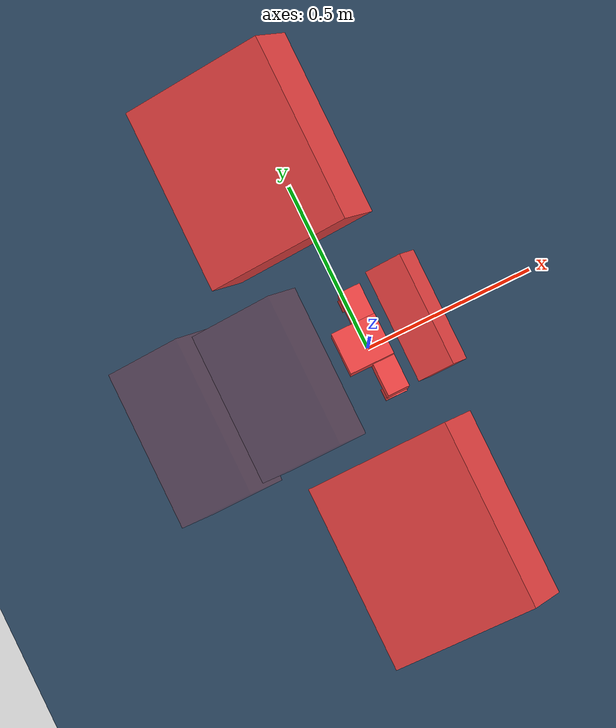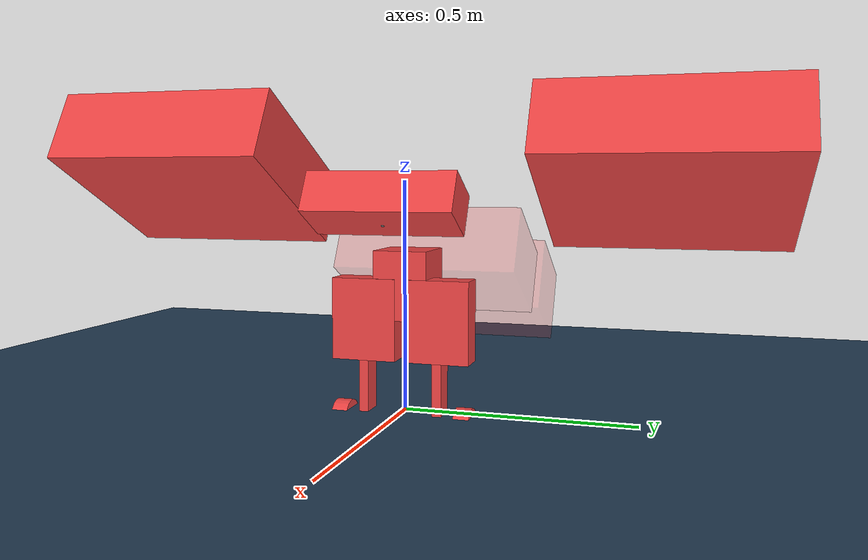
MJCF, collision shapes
<mujoco model="walking eagle u9 pace flat scene">
  <include file="u9_pace.xml" />
  <statistic center="0 0 0.15" extent="0.8" />
  <visual>
    <headlight diffuse="0.6 0.6 0.6" ambient="0.3 0.3 0.3" specular="0 0 0" />
    <rgba haze="0.15 0.25 0.35 1" />
    <global azimuth="-130" elevation="-20" />
  </visual>
  <asset>
    <texture type="skybox" builtin="gradient" rgb1="0.3 0.5 0.7" rgb2="0 0 0" width="512" height="3072" />
    <texture type="2d" name="groundplane" builtin="checker" mark="edge" rgb1="0.2 0.3 0.4" rgb2="0.1 0.2 0.3" markrgb="0.8 0.8 0.8" width="300" height="300" />
    <material name="groundplane" texture="groundplane" texuniform="true" texrepeat="5 5" reflectance="0.2" />
  </asset>
  <worldbody>
    <light pos="0 0 1.5" dir="0 0 -1" directional="true" />
    <geom name="floor" size="0 0 0.05" type="plane" material="groundplane" friction="1.0 0.005 0.0001" />
  </worldbody>
  <keyframe>
    <key name="home" qpos="0 0 0.30 1 0 0 0 0.8 -1.6 0 0.8 -1.6 0" ctrl="0 0 0 0 0 0" />
  </keyframe>
</mujoco>

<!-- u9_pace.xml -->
<mujoco model="walking_eagle_u9_pace">
  <compiler angle="radian" meshdir="meshes_lod" autolimits="true" />
  <option timestep="0.001" gravity="0 0 -9.81" integrator="Euler" />
  <asset>
    <mesh name="base_link_part_00" file="base_link_part_00.STL" />
    <mesh name="base_link_part_01" file="base_link_part_01.STL" />
    <mesh name="base_link_part_02" file="base_link_part_02.STL" />
    <mesh name="base_link_part_03" file="base_link_part_03.STL" />
    <mesh name="base_link_part_04" file="base_link_part_04.STL" />
    <material name="base_link_mat" rgba="1.0 1.0 1.0 1.0" specular="0" />
    <mesh name="left_thigh_link" file="left_thigh_link.STL" />
    <material name="left_thigh_link_mat" rgba="1.0 1.0 1.0 1.0" specular="0" />
    <mesh name="left_calf_link_part_00" file="left_calf_link_part_00.STL" />
    <mesh name="left_calf_link_part_01" file="left_calf_link_part_01.STL" />
    <material name="left_calf_link_mat" rgba="1.0 1.0 1.0 1.0" specular="0" />
    <mesh name="left_foot_link" file="left_foot_link.STL" />
    <material name="left_foot_link_mat" rgba="1.0 1.0 1.0 1.0" specular="0" />
    <mesh name="right_thigh_link" file="right_thigh_link.STL" />
    <material name="right_thigh_link_mat" rgba="1.0 1.0 1.0 1.0" specular="0" />
    <mesh name="right_calf_link_part_00" file="right_calf_link_part_00.STL" />
    <mesh name="right_calf_link_part_01" file="right_calf_link_part_01.STL" />
    <material name="right_calf_link_mat" rgba="1.0 1.0 1.0 1.0" specular="0" />
    <mesh name="right_foot_link" file="right_foot_link.STL" />
    <material name="right_foot_link_mat" rgba="1.0 1.0 1.0 1.0" specular="0" />
    <mesh name="dandan_link" file="dandan_link.STL" />
    <material name="dandan_link_mat" rgba="1.0 1.0 1.0 1.0" specular="0" />
  </asset>
  <worldbody>
    <body name="base_link" pos="0 0 0.30">
      <inertial pos="0.0019409 -4.201e-05 -0.014633" mass="1.0582" fullinertia="0.0033774 0.0054377 0.0042155 2.17e-06 -0.0016967 -3.05e-06" />
      <freejoint />
      <site name="imu" pos="0 0 0" />
      <site name="push_site" pos="0.14543 0 0.1118" quat="0.946255 0 -0.323422 0" />
      <geom name="base_link_visual" type="mesh" mesh="base_link_part_00" material="base_link_mat" group="1" contype="0" conaffinity="0" />
      <geom name="base_link_visual_0_1" type="mesh" mesh="base_link_part_01" material="base_link_mat" group="1" contype="0" conaffinity="0" />
      <geom name="base_link_visual_0_2" type="mesh" mesh="base_link_part_02" material="base_link_mat" group="1" contype="0" conaffinity="0" />
      <geom name="base_link_visual_0_3" type="mesh" mesh="base_link_part_03" material="base_link_mat" group="1" contype="0" conaffinity="0" />
      <geom name="base_link_visual_0_4" type="mesh" mesh="base_link_part_04" material="base_link_mat" group="1" contype="0" conaffinity="0" />
      <geom name="base_link_collision" type="box" size="0.063984999 0.059149999 0.075000012" pos="-0.019765003 0.0 -0.024499988" rgba="0.9373 0.2667 0.2667 0.25" group="3" contype="1" conaffinity="1" />
      <site name="base_link_touch_site" type="box" size="0.063984999 0.059149999 0.075000012" pos="-0.019765003 0.0 -0.024499988" rgba="1 0 0 0.15" />
      <body name="left_thigh_joint" pos="0.01425 0.0537 -0.0415" quat="0.5000249993783629 -0.49997683606264415 0.5000231628575238 0.49997499937838347">
        <inertial pos="0.016016 0.00042709 0.056411" mass="0.45883631" fullinertia="0.00027108 0.0009777 0.00078368 -1.081e-05 0.00020322 9.85e-06" />
        <joint name="left_thigh_joint" type="hinge" axis="0.0 0.0 1.0" damping="6.9259916554931245e-05" frictionloss="0.00039277340996955734" armature="0.003395025986270572" limited="true" range="-0.43 1.57" />
        <geom name="left_thigh_link_visual" type="mesh" mesh="left_thigh_link" material="left_thigh_link_mat" group="1" contype="0" conaffinity="0" />
        <geom name="left_thigh_collision" type="box" size="0.088995105 0.031453958 0.071400002" pos="0.057495112 1.2701e-05 0.027400002" rgba="0.9373 0.2667 0.2667 0.25" group="3" contype="1" conaffinity="1" />
        <site name="left_thigh_touch_site" type="box" size="0.088995105 0.031453958 0.071400002" pos="0.057495112 1.2701e-05 0.027400002" rgba="1 0 0 0.15" />
        <body name="left_calf_joint" pos="0.136 0.0 0.0283">
          <inertial pos="0.13057987 -7.624e-05 0.01403969" mass="0.24876" fullinertia="3.508e-05 0.00051941 0.00050426 -3.28e-06 -6.874e-05 -2.6e-07" />
          <joint name="left_calf_joint" type="hinge" axis="0.0 0.0 1.0" damping="0.0014802078217493464" frictionloss="0.18304102565728816" armature="0.019759596621712217" limited="true" range="-2.669 -0.17" />
          <geom name="left_calf_link_visual" type="mesh" mesh="left_calf_link_part_00" material="left_calf_link_mat" group="1" contype="0" conaffinity="0" />
          <geom name="left_calf_link_visual_0_1" type="mesh" mesh="left_calf_link_part_01" material="left_calf_link_mat" group="1" contype="0" conaffinity="0" />
          <geom name="left_calf_collision" type="box" size="0.098638031 0.027 0.01" pos="0.07836197 0.0 0.0" rgba="0.9373 0.2667 0.2667 0.25" group="3" contype="1" conaffinity="1" />
          <site name="left_calf_touch_site" type="box" size="0.098638031 0.027 0.01" pos="0.07836197 0.0 0.0" rgba="1 0 0 0.15" />
          <body name="left_foot_joint" pos="0.15 0.0 0.038">
            <inertial pos="-6.41e-06 2.82e-06 0.016578" mass="0.12784" fullinertia="7.506e-05 7.507e-05 0.00012118 0.0 1e-08 0.0" />
            <joint name="left_foot_joint" type="hinge" axis="0.0 0.0 1.0" damping="0" frictionloss="0" armature="0.00080000000000000004" limited="false" />
            <geom name="left_foot_link_visual" type="mesh" mesh="left_foot_link" material="left_foot_link_mat" group="1" contype="0" conaffinity="0" />
            <geom name="left_foot_collision" type="cylinder" size="0.0425 0.017285155" pos="0.0 0.0 0.016785155" rgba="0.9373 0.2667 0.2667 0.25" group="3" contype="1" conaffinity="1" />
            <site name="left_foot_touch_site" type="cylinder" size="0.0425 0.017285155" pos="0.0 0.0 0.016785155" rgba="1 0 0 0.15" />
          </body>
        </body>
      </body>
      <body name="right_thigh_joint" pos="0.01425 -0.05405 -0.0415" quat="0.49999816339744835 0.4999999999966269 0.4999999999966269 -0.5000018366025517">
        <inertial pos="0.016016 -0.00042709 0.056411" mass="0.45883631" fullinertia="0.00027108 0.0009777 0.00078368 1.081e-05 0.00020322 -9.85e-06" />
        <joint name="right_thigh_joint" type="hinge" axis="0.0 0.0 -1.0" damping="6.9259916554931245e-05" frictionloss="0.00039277340996955734" armature="0.003395025986270572" limited="true" range="-0.43 1.57" />
        <geom name="right_thigh_link_visual" type="mesh" mesh="right_thigh_link" material="right_thigh_link_mat" group="1" contype="0" conaffinity="0" />
        <geom name="right_thigh_collision" type="box" size="0.088995105 0.031453958 0.071400002" pos="0.057495112 -1.2701e-05 0.027400002" rgba="0.9373 0.2667 0.2667 0.25" group="3" contype="1" conaffinity="1" />
        <site name="right_thigh_touch_site" type="box" size="0.088995105 0.031453958 0.071400002" pos="0.057495112 -1.2701e-05 0.027400002" rgba="1 0 0 0.15" />
        <body name="right_calf_joint" pos="0.13600000000003 0.0 0.0282999999998195">
          <inertial pos="0.13057987 7.624e-05 0.01403969" mass="0.24876" fullinertia="3.508e-05 0.00051941 0.00050426 3.28e-06 -6.874e-05 2.6e-07" />
          <joint name="right_calf_joint" type="hinge" axis="0.0 0.0 -1.0" damping="0.0014802078217493464" frictionloss="0.18304102565728816" armature="0.019759596621712217" limited="true" range="-2.669 -0.17" />
          <geom name="right_calf_link_visual" type="mesh" mesh="right_calf_link_part_00" material="right_calf_link_mat" group="1" contype="0" conaffinity="0" />
          <geom name="right_calf_link_visual_0_1" type="mesh" mesh="right_calf_link_part_01" material="right_calf_link_mat" group="1" contype="0" conaffinity="0" />
          <geom name="right_calf_collision" type="box" size="0.098638031 0.027 0.01" pos="0.07836197 0.0 0.0" rgba="0.9373 0.2667 0.2667 0.25" group="3" contype="1" conaffinity="1" />
          <site name="right_calf_touch_site" type="box" size="0.098638031 0.027 0.01" pos="0.07836197 0.0 0.0" rgba="1 0 0 0.15" />
          <body name="right_foot_joint" pos="0.15 0.0 0.038">
            <inertial pos="-6.41e-06 -2.82e-06 0.016578" mass="0.12784" fullinertia="7.506e-05 7.507e-05 0.00012118 0.0 1e-08 0.0" />
            <joint name="right_foot_joint" type="hinge" axis="0.0 0.0 -1.0" damping="0" frictionloss="0" armature="0.00080000000000000004" limited="false" />
            <geom name="right_foot_link_visual" type="mesh" mesh="right_foot_link" material="right_foot_link_mat" group="1" contype="0" conaffinity="0" />
            <geom name="right_foot_collision" type="cylinder" size="0.0425 0.017285155" pos="0.0 0.0 0.016785155" rgba="0.9373 0.2667 0.2667 0.25" group="3" contype="1" conaffinity="1" />
            <site name="right_foot_touch_site" type="cylinder" size="0.0425 0.017285155" pos="0.0 0.0 0.016785155" rgba="1 0 0 0.15" />
          </body>
        </body>
      </body>
      <body name="dandan_link" pos="0.14543 -0.00020015 0.1118" quat="0.9702959912474363 0.0 -0.24192083285478982 0.0">
        <inertial pos="-0.05511192 1.77e-05 0.05323178" mass="0.91468954" fullinertia="0.02435745 0.02290379 0.04310401 1.302e-05 0.00072178 4.12e-06" />
        <geom name="dandan_link_visual" type="mesh" mesh="dandan_link" material="dandan_link_mat" group="1" contype="0" conaffinity="0" />
        <geom name="dandan_upper_left_collision" type="box" pos="-0.15145913884043694 0.5448607355356216 0.20693397521972656" size="0.21690913799405098 0.2588063119649887 0.08434064078330994" rgba="0.9373 0.2667 0.2667 0.25" group="3" contype="1" conaffinity="1" />
        <site name="dandan_upper_left_touch_site" type="box" pos="-0.15145913884043694 0.5448607355356216 0.20693397521972656" size="0.21690913799405098 0.2588063119649887 0.08434064078330994" rgba="1 0 0 0.15" />
        <geom name="dandan_upper_right_collision" type="box" pos="-0.15145913884043694 -0.5448104739189148 0.20693397521972656" size="0.21690913799405098 0.2588063268661499 0.08434064078330994" rgba="0.9373 0.2667 0.2667 0.25" group="3" contype="1" conaffinity="1" />
        <site name="dandan_upper_right_touch_site" type="box" pos="-0.15145913884043694 -0.5448104739189148 0.20693397521972656" size="0.21690913799405098 0.2588063268661499 0.08434064078330994" rgba="1 0 0 0.15" />
        <geom name="dandan_tail_rear_collision" type="box" pos="-0.6829455494880676 5.5149197578430176e-05 0.13310958445072174" size="0.11842022228240967 0.22869452226161957 0.09300958502292633" rgba="0.9373 0.2667 0.2667 0.25" group="3" contype="0" conaffinity="0" />
        <site name="dandan_tail_rear_touch_site" type="box" pos="-0.6829455494880676 5.5149197578430176e-05 0.13310958445072174" size="0.11842022228240967 0.22869452226161957 0.09300958502292633" rgba="1 0 0 0.15" />
        <geom name="dandan_tail_mid_collision" type="box" pos="-0.4141962379217148 2.514570951461792e-05 0.10103941895067692" size="0.12959622728824616 0.21641197937726975 0.08043941806256771" rgba="0.9373 0.2667 0.2667 0.25" group="3" contype="0" conaffinity="0" />
        <site name="dandan_tail_mid_touch_site" type="box" pos="-0.4141962379217148 2.514570951461792e-05 0.10103941895067692" size="0.12959622728824616 0.21641197937726975 0.08043941806256771" rgba="1 0 0 0.15" />
        <geom name="dandan_front_center_collision" type="box" pos="0.010047579184174538 2.5153160095214844e-05 0.042435511037706986" size="0.05540241996943951 0.15852812814712525 0.04543551285564934" rgba="0.9373 0.2667 0.2667 0.25" group="3" contype="1" conaffinity="1" />
        <site name="dandan_front_center_touch_site" type="box" pos="0.010047579184174538 2.5153160095214844e-05 0.042435511037706986" size="0.05540241996943951 0.15852812814712525 0.04543551285564934" rgba="1 0 0 0.15" />
      </body>
    </body>
  </worldbody>
  <actuator>
    <motor name="left_thigh_motor" joint="left_thigh_joint" ctrlrange="-5.5 5.5" />
    <motor name="left_calf_motor" joint="left_calf_joint" ctrlrange="-14 14" />
    <motor name="left_foot_motor" joint="left_foot_joint" ctrlrange="-5.5 5.5" />
    <motor name="right_thigh_motor" joint="right_thigh_joint" ctrlrange="-5.5 5.5" />
    <motor name="right_calf_motor" joint="right_calf_joint" ctrlrange="-14 14" />
    <motor name="right_foot_motor" joint="right_foot_joint" ctrlrange="-5.5 5.5" />
  </actuator>
  <sensor>
    <jointpos name="left_thigh_pos" joint="left_thigh_joint" />
    <jointpos name="left_calf_pos" joint="left_calf_joint" />
    <jointpos name="left_foot_pos" joint="left_foot_joint" />
    <jointpos name="right_thigh_pos" joint="right_thigh_joint" />
    <jointpos name="right_calf_pos" joint="right_calf_joint" />
    <jointpos name="right_foot_pos" joint="right_foot_joint" />
    <jointvel name="left_thigh_vel" joint="left_thigh_joint" />
    <jointvel name="left_calf_vel" joint="left_calf_joint" />
    <jointvel name="left_foot_vel" joint="left_foot_joint" />
    <jointvel name="right_thigh_vel" joint="right_thigh_joint" />
    <jointvel name="right_calf_vel" joint="right_calf_joint" />
    <jointvel name="right_foot_vel" joint="right_foot_joint" />
    <jointactuatorfrc name="left_thigh_torque" joint="left_thigh_joint" />
    <jointactuatorfrc name="left_calf_torque" joint="left_calf_joint" />
    <jointactuatorfrc name="left_foot_torque" joint="left_foot_joint" />
    <jointactuatorfrc name="right_thigh_torque" joint="right_thigh_joint" />
    <jointactuatorfrc name="right_calf_torque" joint="right_calf_joint" />
    <jointactuatorfrc name="right_foot_torque" joint="right_foot_joint" />
    <framequat name="imu_quat" objtype="site" objname="imu" noise="0.0" />
    <gyro name="imu_gyro" site="imu" noise="0.0" />
    <accelerometer name="imu_acc" site="imu" />
    <gyro name="gyro" site="imu" />
    <velocimeter name="local_linvel" site="imu" />
    <framexaxis name="xvector" objtype="site" objname="imu" />
    <frameyaxis name="yvector" objtype="site" objname="imu" />
    <framezaxis name="upvector" objtype="site" objname="imu" />
    <touch name="base_link_touch" site="base_link_touch_site" />
    <touch name="left_thigh_touch" site="left_thigh_touch_site" />
    <touch name="left_calf_touch" site="left_calf_touch_site" />
    <touch name="left_foot_touch" site="left_foot_touch_site" />
    <touch name="right_thigh_touch" site="right_thigh_touch_site" />
    <touch name="right_calf_touch" site="right_calf_touch_site" />
    <touch name="right_foot_touch" site="right_foot_touch_site" />
    <touch name="dandan_upper_left_touch" site="dandan_upper_left_touch_site" />
    <touch name="dandan_upper_right_touch" site="dandan_upper_right_touch_site" />
    <touch name="dandan_tail_rear_touch" site="dandan_tail_rear_touch_site" />
    <touch name="dandan_tail_mid_touch" site="dandan_tail_mid_touch_site" />
    <touch name="dandan_front_center_touch" site="dandan_front_center_touch_site" />
  </sensor>
  <contact>
    <exclude body1="base_link" body2="left_thigh_joint" />
    <exclude body1="base_link" body2="left_calf_joint" />
    <exclude body1="base_link" body2="left_foot_joint" />
    <exclude body1="base_link" body2="right_thigh_joint" />
    <exclude body1="base_link" body2="right_calf_joint" />
    <exclude body1="base_link" body2="right_foot_joint" />
    <exclude body1="base_link" body2="dandan_link" />
    <exclude body1="left_thigh_joint" body2="left_calf_joint" />
    <exclude body1="left_thigh_joint" body2="left_foot_joint" />
    <exclude body1="left_thigh_joint" body2="right_thigh_joint" />
    <exclude body1="left_thigh_joint" body2="right_calf_joint" />
    <exclude body1="left_thigh_joint" body2="right_foot_joint" />
    <exclude body1="left_thigh_joint" body2="dandan_link" />
    <exclude body1="left_calf_joint" body2="left_foot_joint" />
    <exclude body1="left_calf_joint" body2="right_thigh_joint" />
    <exclude body1="left_calf_joint" body2="right_calf_joint" />
    <exclude body1="left_calf_joint" body2="right_foot_joint" />
    <exclude body1="left_calf_joint" body2="dandan_link" />
    <exclude body1="left_foot_joint" body2="right_thigh_joint" />
    <exclude body1="left_foot_joint" body2="right_calf_joint" />
    <exclude body1="left_foot_joint" body2="right_foot_joint" />
    <exclude body1="left_foot_joint" body2="dandan_link" />
    <exclude body1="right_thigh_joint" body2="right_calf_joint" />
    <exclude body1="right_thigh_joint" body2="right_foot_joint" />
    <exclude body1="right_thigh_joint" body2="dandan_link" />
    <exclude body1="right_calf_joint" body2="right_foot_joint" />
    <exclude body1="right_calf_joint" body2="dandan_link" />
    <exclude body1="right_foot_joint" body2="dandan_link" />
  </contact>
</mujoco>
